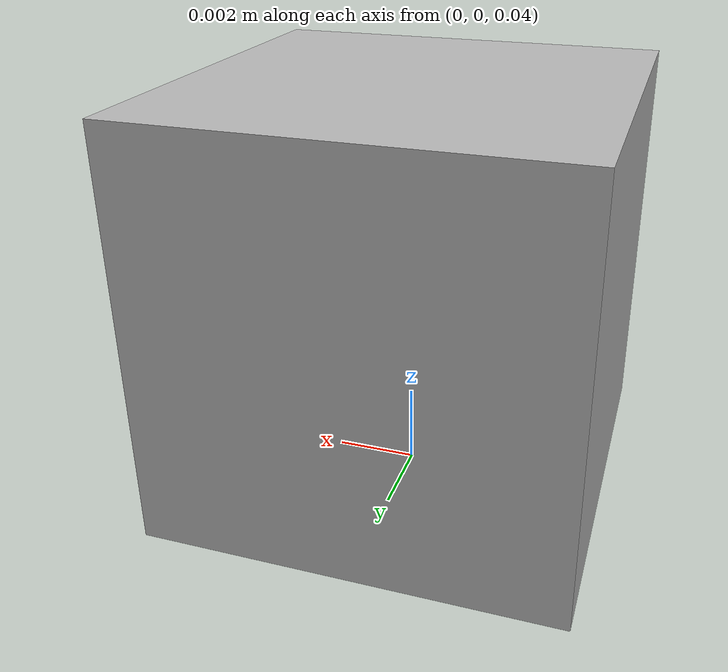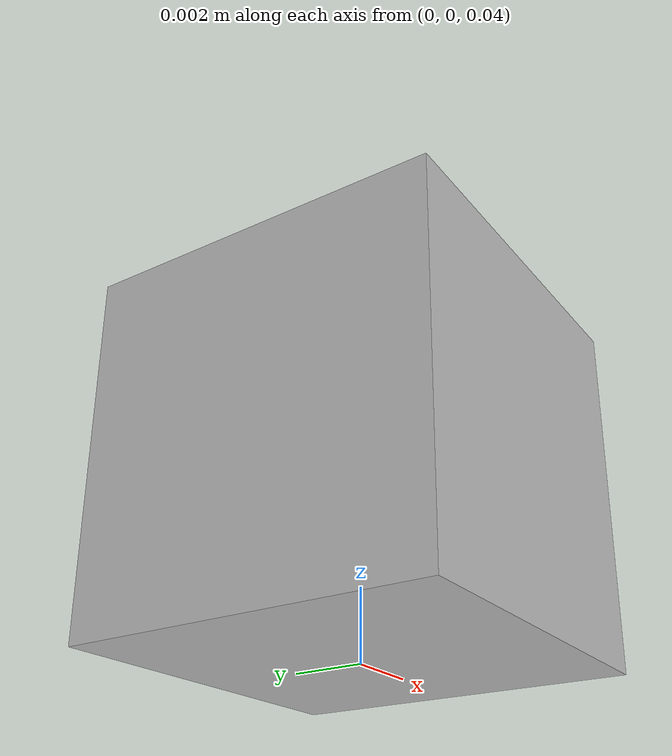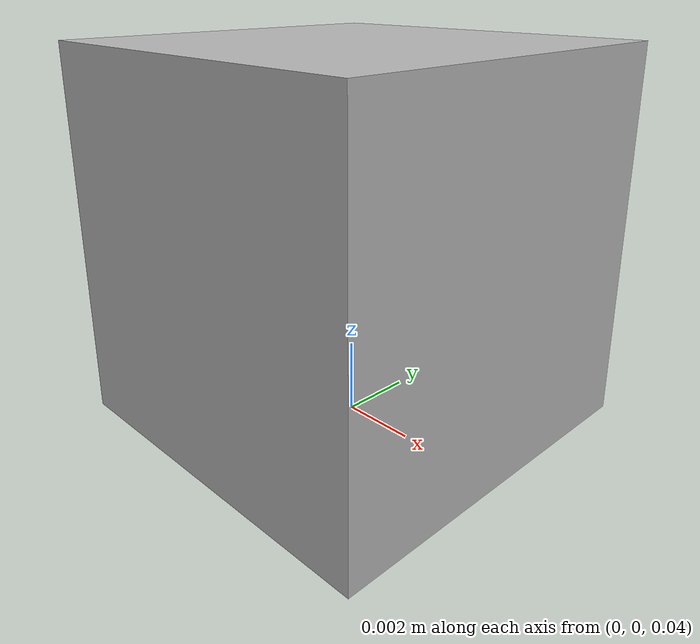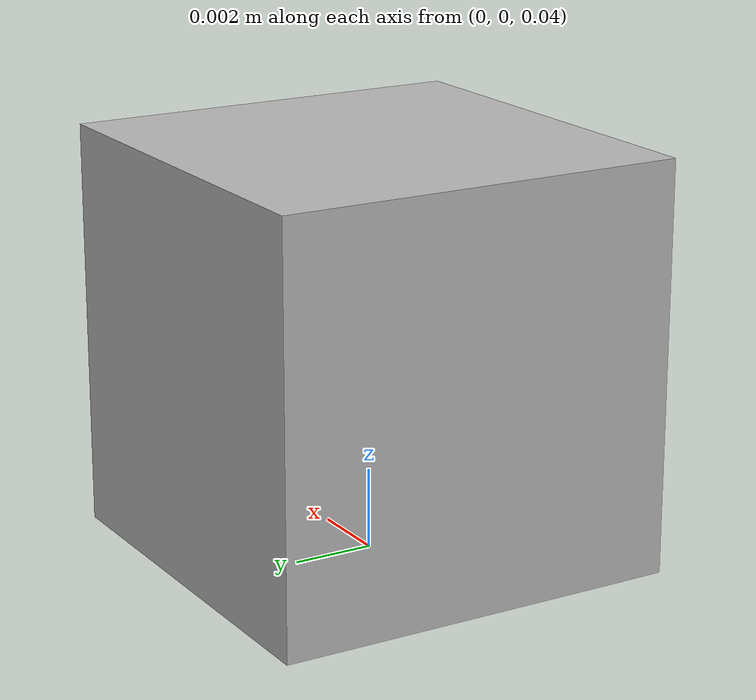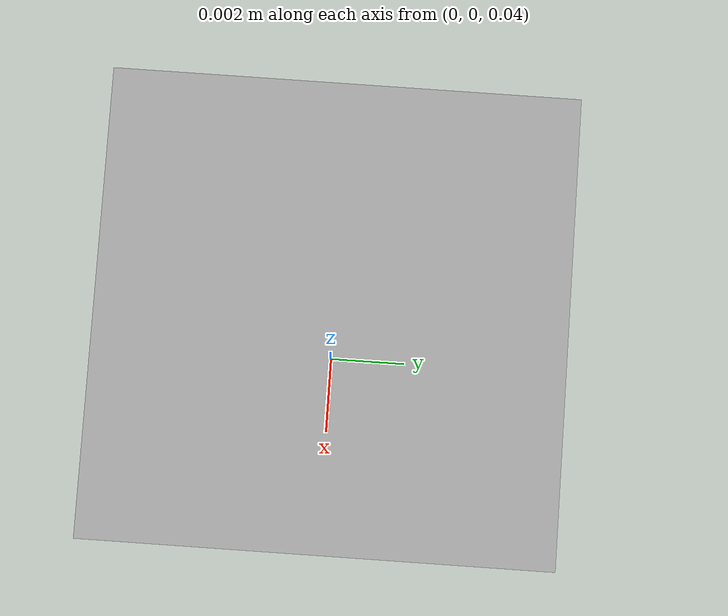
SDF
<sdf version="1.4">
  <model name="sonar_back">
    <pose>0 0 0.045074 0 -0 0</pose>
    <link name="link">
        <inertial>
        <pose>0 0 0 0 0 0</pose>
          <mass>0.015</mass>
          <inertia>
            <ixx>4.15e-6</ixx>
          <ixy>0</ixy>
          <ixz>0</ixz>
          <iyy>2.407e-6</iyy>
          <iyz>0</iyz>
          <izz>2.407e-6</izz>
          </inertia>
        </inertial>
        <collision name='collision'>
          <geometry>
            <box>
              <size>0.01 0.01 0.01</size>
            </box>
          </geometry>
          <max_contacts>10</max_contacts>
          <surface>
            <contact>
              <ode/>
            </contact>
            <bounce/>
            <friction>
              <ode/>
            </friction>
          </surface>
        </collision>
        <visual name='visual'>
          <geometry>
            <box>
              <size>0.01 0.01 0.01</size>
            </box>
          </geometry>
        </visual>
      <sensor name="sonar_back" type="sonar">
        <pose>0 0 0 1.5707 -1.5707 1.5707</pose>
          <sonar>
            <min>0.02</min>
            <max>5.0</max>
            <radius>1.33974388395</radius>
          </sonar>
        <plugin name="SonarPlugin" filename="libgazebo_sonar_plugin.so"/>

        <always_on>1</always_on>
        <update_rate>20</update_rate>
        <visualize>true</visualize>
      </sensor>
        <self_collide>0</self_collide>
        <kinematic>0</kinematic>
    </link>
  </model>
</sdf>
